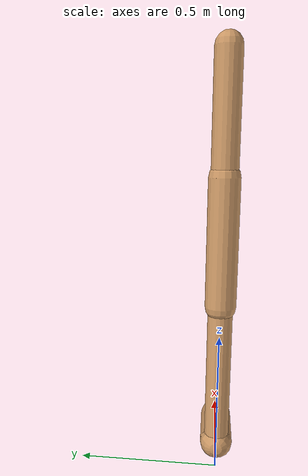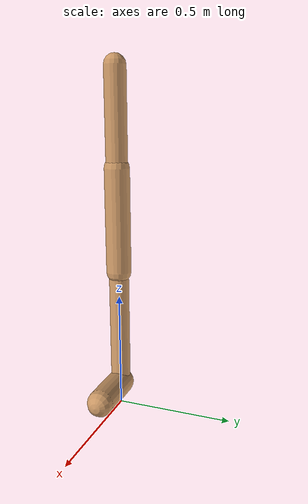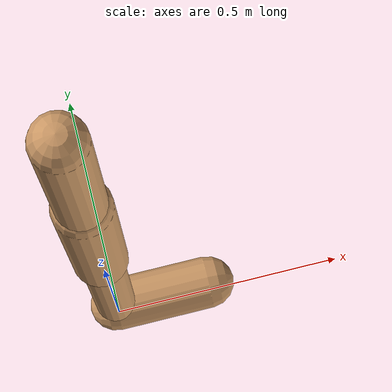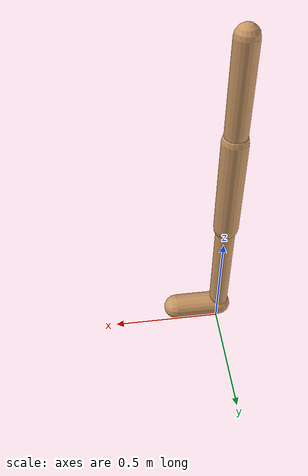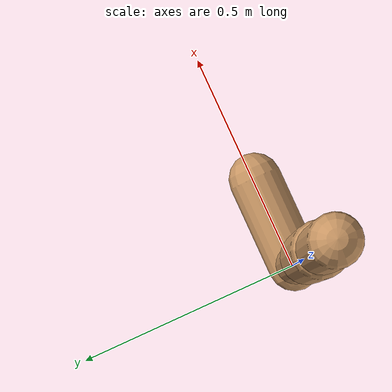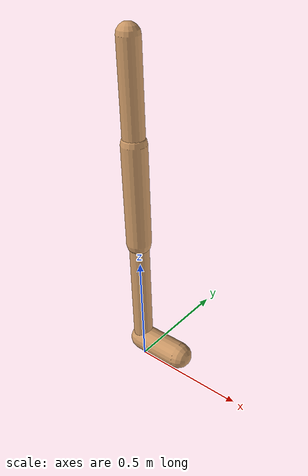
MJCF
<mujoco model="walker2d">
  <compiler angle="degree" coordinate="global" inertiafromgeom="true" />
  <default>
    <joint armature="0.01" damping=".1" limited="true" />
    <geom conaffinity="0" condim="3" contype="1" density="1000" friction="0.8 .1 .1" rgba="0.8 0.6 .4 1" />
  </default>
  <option integrator="RK4" timestep="0.002" />
  <worldbody>

    <body name="torso" pos="0 0 -0.02984627986196364">
      <joint armature="0" axis="1 0 0" damping="0" limited="false" name="ignorex" pos="0 0 0" stiffness="0" type="slide" />
      <joint armature="0" axis="0 0 1" damping="0" limited="false" name="ignorez" pos="0 0 0" ref="1.25" stiffness="0" type="slide" />
      <joint armature="0" axis="0 1 0" damping="0" limited="false" name="ignorey" pos="0 0 0" stiffness="0" type="hinge" />
      <geom fromto="0 0 1.45 0 0 1.05" name="torso_geom" size="0.04553173763936999" type="capsule" />
      <body name="thigh">
        <joint axis="0 -1 0" name="thigh_joint" pos="0 0 1.05" range="-150 0" type="hinge" />
        <geom fromto="0.0 0.0 1.05 0.0 0.0 0.6141377115135617" name="thigh_geom" size="0.05316308597762979" type="capsule" />
        <body name="leg" pos="0.0 0.0 0.01413771151356169">
          <joint axis="0 -1 0" name="leg_joint" pos="0 0 0.6" range="-150 0" type="hinge" />
          <geom fromto="0.0 0.0 0.6 0.0 0.0 0.11570856834840192" name="leg_geom" size="0.04253046878210383" type="capsule" />
          <body name="foot" pos="0.0 0.0 0.01570856834840191">
            <joint axis="0 -1 0" name="foot_joint" pos="0 0 0.1" range="-45 45" type="hinge" />
            <geom fromto="-0.0 0.0 0.1 0.20433418310776075 0.0 0.1" name="foot_geom" size="0.05698813004279507" type="capsule" />
          </body>
        </body>
      </body>

      <body name="thigh_left">
        <joint axis="0 -1 0" name="thigh_left_joint" pos="0 0 1.05" range="-150 0" type="hinge" />
        <geom fromto="0.0 0.0 1.05 0.0 0.0 0.6141377115135617" name="thigh_left_geom" rgba=".7 .3 .6 1" size="0.05316308597762979" type="capsule" />
        <body name="leg_left" pos="0.0 0.0 0.01413771151356169">
          <joint axis="0 -1 0" name="leg_left_joint" pos="0 0 0.6" range="-150 0" type="hinge" />
          <geom fromto="0.0 0.0 0.6 0.0 0.0 0.11570856834840192" name="leg_left_geom" rgba=".7 .3 .6 1" size="0.04253046878210383" type="capsule" />
          <body name="foot_left" pos="0.0 0.0 0.01570856834840191">
            <joint axis="0 -1 0" name="foot_left_joint" pos="0 0 0.1" range="-45 45" type="hinge" />
            <geom fromto="-0.0 0.0 0.1 0.20433418310776075 0.0 0.1" name="foot_left_geom" rgba=".7 .3 .6 1" size="0.05698813004279507" type="capsule" />
          </body>
        </body>
      </body>
    </body>
  </worldbody>
  <actuator>

    <motor ctrllimited="true" ctrlrange="-1.0 1.0" gear="100" joint="thigh_joint" />
    <motor ctrllimited="true" ctrlrange="-1.0 1.0" gear="100" joint="leg_joint" />
    <motor ctrllimited="true" ctrlrange="-1.0 1.0" gear="100" joint="foot_joint" />
    <motor ctrllimited="true" ctrlrange="-1.0 1.0" gear="100" joint="thigh_left_joint" />
    <motor ctrllimited="true" ctrlrange="-1.0 1.0" gear="100" joint="leg_left_joint" />
    <motor ctrllimited="true" ctrlrange="-1.0 1.0" gear="100" joint="foot_left_joint" />

  </actuator>
</mujoco>
